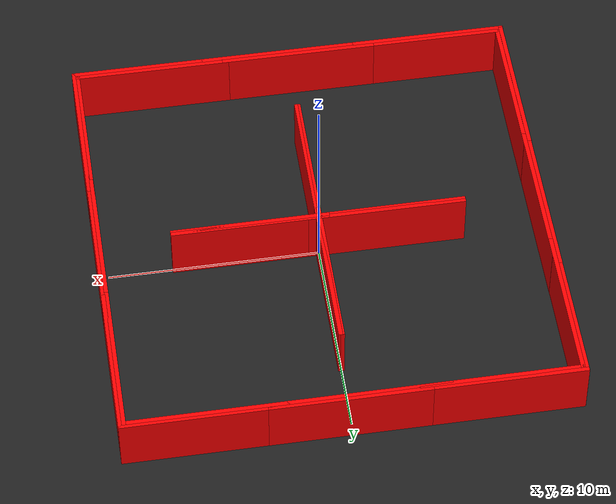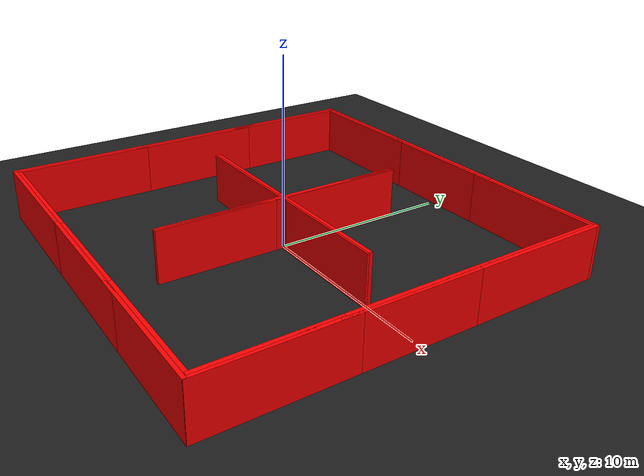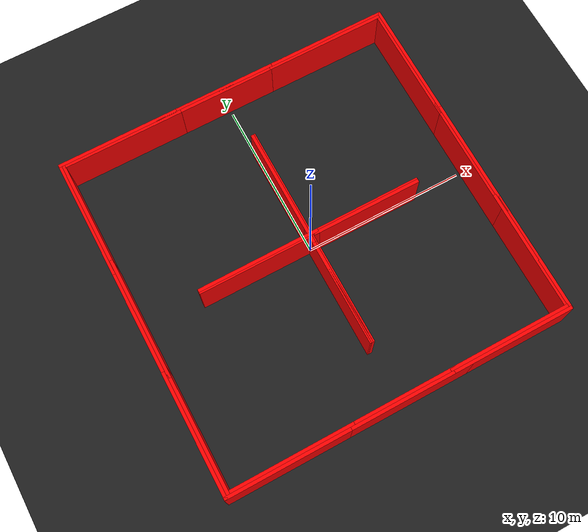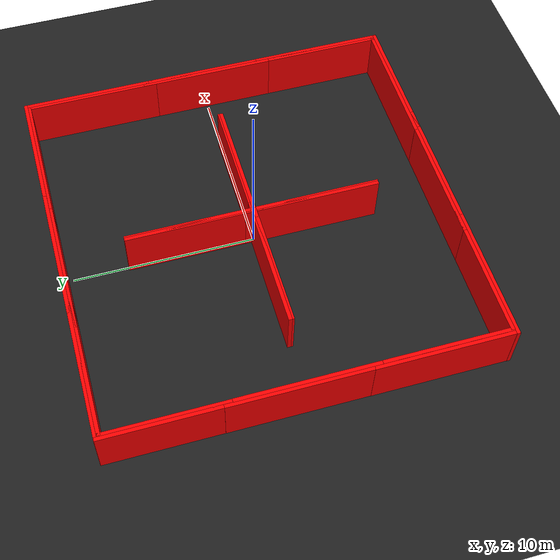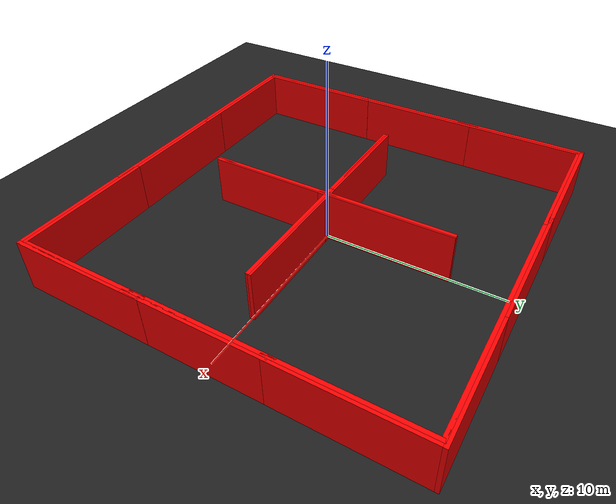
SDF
<sdf version="1.4">
 <world name="default">
  <light name="sun" type="directional">
   <pose>0 0 10 0 -0 0</pose>
   <diffuse>0.8 0.8 0.8 1</diffuse>
   <specular>0.2 0.2 0.2 1</specular>
   <attenuation>
    <range>1000</range>
    <constant>0.9</constant>
    <linear>0.01</linear>
    <quadratic>0.001</quadratic>
   </attenuation>
   <direction>-0.5 0.1 -0.9</direction>
  </light>
  <model name="ground_plane">
   <static>1</static>
   <link name="link">
    <collision name="collision">
     <geometry><plane><normal>0 0 1</normal><size>100 100</size></plane></geometry>
     <surface><friction><ode><mu>100</mu><mu2>50</mu2></ode></friction></surface>
    </collision>
    <visual name="visual">
     <cast_shadows>0</cast_shadows>
     <geometry><plane><normal>0 0 1</normal><size>100 100</size></plane></geometry>
     <material>
      <script><uri>file://media/materials/scripts/gazebo.material</uri><name>Gazebo/Black</name></script>
     </material>
    </visual>
    <velocity_decay><linear>0</linear><angular>0</angular></velocity_decay>
   </link>
  </model>
  <physics type="ode">
   <max_step_size>0.001</max_step_size>
   <real_time_factor>1</real_time_factor>
   <real_time_update_rate>1000</real_time_update_rate>
   <gravity>0 0 -9.8</gravity>
  </physics>
  <scene><ambient>0 0 0 1</ambient><background>0 0 0 1</background><shadows>0</shadows></scene>
  <model name="grey_wall">
   <static>1</static>
   <link name="link">
    <pose>0 0 1.4 0 -0 0</pose>
    <collision name="collision"><geometry><box><size>7.5 0.2 2.8</size></box></geometry></collision>
    <visual name="visual">
     <cast_shadows>0</cast_shadows>
     <geometry><box><size>7.5 0.2 2.8</size></box></geometry>
     <material>
      <ambient>1 0 0 1</ambient>
      <diffuse>1 0 0 1</diffuse>
      <specular>1 0 0 1</specular>
      <emissive>1 0 0 1</emissive>
     </material>
    </visual>
    <velocity_decay><linear>0</linear><angular>0</angular></velocity_decay>
   </link>
   <pose>-6.7561 10.3722 0 0 -0 0</pose>
  </model>
  <model name="grey_wall_0">
   <static>1</static>
   <link name="link">
    <pose>0 0 1.4 0 -0 0</pose>
    <collision name="collision"><geometry><box><size>7.5 0.2 2.8</size></box></geometry></collision>
    <visual name="visual">
     <cast_shadows>0</cast_shadows>
     <geometry><box><size>7.5 0.2 2.8</size></box></geometry>
     <material>
      <ambient>1 0 0 1</ambient>
      <diffuse>1 0 0 1</diffuse>
      <specular>1 0 0 1</specular>
      <emissive>1 0 0 1</emissive>
     </material>
    </visual>
    <velocity_decay><linear>0</linear><angular>0</angular></velocity_decay>
   </link>
   <pose>-0.796756 10.3765 0 0 -0 0</pose>
  </model>
  <model name="grey_wall_1">
   <static>1</static>
   <link name="link">
    <pose>0 0 1.4 0 -0 0</pose>
    <collision name="collision"><geometry><box><size>7.5 0.2 2.8</size></box></geometry></collision>
    <visual name="visual">
     <cast_shadows>0</cast_shadows>
     <geometry><box><size>7.5 0.2 2.8</size></box></geometry>
     <material>
      <ambient>1 0 0 1</ambient>
      <diffuse>1 0 0 1</diffuse>
      <specular>1 0 0 1</specular>
      <emissive>1 0 0 1</emissive>
     </material>
    </visual>
    <velocity_decay><linear>0</linear><angular>0</angular></velocity_decay>
   </link>
   <pose>6.63489 10.3804 0 0 -0 0</pose>
  </model>
  <model name="grey_wall_2">
   <static>1</static>
   <link name="link">
    <pose>0 0 1.4 0 -0 0</pose>
    <collision name="collision"><geometry><box><size>7.5 0.2 2.8</size></box></geometry></collision>
    <visual name="visual">
     <cast_shadows>0</cast_shadows>
     <geometry><box><size>7.5 0.2 2.8</size></box></geometry>
     <material>
      <ambient>1 0 0 1</ambient>
      <diffuse>1 0 0 1</diffuse>
      <specular>1 0 0 1</specular>
      <emissive>1 0 0 1</emissive>
     </material>
    </visual>
    <velocity_decay><linear>0</linear><angular>0</angular></velocity_decay>
   </link>
   <pose>-6.73975 -10.3185 0 0 -0 0</pose>
  </model>
  <model name="grey_wall_3">
   <static>1</static>
   <link name="link">
    <pose>0 0 1.4 0 -0 0</pose>
    <collision name="collision"><geometry><box><size>7.5 0.2 2.8</size></box></geometry></collision>
    <visual name="visual">
     <cast_shadows>0</cast_shadows>
     <geometry><box><size>7.5 0.2 2.8</size></box></geometry>
     <material>
      <ambient>1 0 0 1</ambient>
      <diffuse>1 0 0 1</diffuse>
      <specular>1 0 0 1</specular>
      <emissive>1 0 0 1</emissive>
     </material>
    </visual>
    <velocity_decay><linear>0</linear><angular>0</angular></velocity_decay>
   </link>
   <pose>-0.524266 -10.3159 0 0 -0 0</pose>
  </model>
  <model name="grey_wall_4">
   <static>1</static>
   <link name="link">
    <pose>0 0 1.4 0 -0 0</pose>
    <collision name="collision"><geometry><box><size>7.5 0.2 2.8</size></box></geometry></collision>
    <visual name="visual">
     <cast_shadows>0</cast_shadows>
     <geometry><box><size>7.5 0.2 2.8</size></box></geometry>
     <material>
      <ambient>1 0 0 1</ambient>
      <diffuse>1 0 0 1</diffuse>
      <specular>1 0 0 1</specular>
      <emissive>1 0 0 1</emissive>
     </material>
    </visual>
    <velocity_decay><linear>0</linear><angular>0</angular></velocity_decay>
   </link>
   <pose>6.6605 -10.3136 0 0 -0 0</pose>
  </model>
  <model name="grey_wall_5">
   <static>1</static>
   <link name="link">
    <pose>0 0 1.4 0 -0 0</pose>
    <collision name="collision"><geometry><box><size>7.5 0.2 2.8</size></box></geometry></collision>
    <visual name="visual">
     <cast_shadows>0</cast_shadows>
     <geometry><box><size>7.5 0.2 2.8</size></box></geometry>
     <material>
      <ambient>1 0 0 1</ambient>
      <diffuse>1 0 0 1</diffuse>
      <specular>1 0 0 1</specular>
      <emissive>1 0 0 1</emissive>
     </material>
    </visual>
    <velocity_decay><linear>0</linear><angular>0</angular></velocity_decay>
   </link>
   <pose>10.3255 -6.63645 0 0 0 -1.5708</pose>
  </model>
  <model name="grey_wall_6">
   <static>1</static>
   <link name="link">
    <pose>0 0 1.4 0 -0 0</pose>
    <collision name="collision"><geometry><box><size>7.5 0.2 2.8</size></box></geometry></collision>
    <visual name="visual">
     <cast_shadows>0</cast_shadows>
     <geometry><box><size>7.5 0.2 2.8</size></box></geometry>
     <material>
      <ambient>1 0 0 1</ambient>
      <diffuse>1 0 0 1</diffuse>
      <specular>1 0 0 1</specular>
      <emissive>1 0 0 1</emissive>
     </material>
    </visual>
    <velocity_decay><linear>0</linear><angular>0</angular></velocity_decay>
   </link>
   <pose>10.3224 -0.055181 0 0 -0 1.5708</pose>
  </model>
  <model name="grey_wall_8">
   <static>1</static>
   <link name="link">
    <pose>0 0 1.4 0 -0 0</pose>
    <collision name="collision"><geometry><box><size>7.5 0.2 2.8</size></box></geometry></collision>
    <visual name="visual">
     <cast_shadows>0</cast_shadows>
     <geometry><box><size>7.5 0.2 2.8</size></box></geometry>
     <material>
      <ambient>1 0 0 1</ambient>
      <diffuse>1 0 0 1</diffuse>
      <specular>1 0 0 1</specular>
      <emissive>1 0 0 1</emissive>
     </material>
    </visual>
    <velocity_decay><linear>0</linear><angular>0</angular></velocity_decay>
   </link>
   <pose>-10.4662 6.70249 0 0 -0 1.5708</pose>
  </model>
  <model name="grey_wall_9">
   <static>1</static>
   <link name="link">
    <pose>0 0 1.4 0 -0 0</pose>
    <collision name="collision"><geometry><box><size>7.5 0.2 2.8</size></box></geometry></collision>
    <visual name="visual">
     <cast_shadows>0</cast_shadows>
     <geometry><box><size>7.5 0.2 2.8</size></box></geometry>
     <material>
      <ambient>1 0 0 1</ambient>
      <diffuse>1 0 0 1</diffuse>
      <specular>1 0 0 1</specular>
      <emissive>1 0 0 1</emissive>
     </material>
    </visual>
    <velocity_decay><linear>0</linear><angular>0</angular></velocity_decay>
   </link>
   <pose>-10.4576 0.203964 0 0 0 -1.5708</pose>
  </model>
  <spherical_coordinates>
   <surface_model>EARTH_WGS84</surface_model>
   <latitude_deg>0</latitude_deg>
   <longitude_deg>0</longitude_deg>
   <elevation>0</elevation>
   <heading_deg>0</heading_deg>
  </spherical_coordinates>
  <model name="grey_wall_11">
   <static>1</static>
   <link name="link">
    <pose>0 0 1.4 0 -0 0</pose>
    <collision name="collision"><geometry><box><size>7.5 0.2 2.8</size></box></geometry></collision>
    <visual name="visual">
     <cast_shadows>0</cast_shadows>
     <geometry><box><size>7.5 0.2 2.8</size></box></geometry>
     <material>
      <ambient>1 0 0 1</ambient>
      <diffuse>1 0 0 1</diffuse>
      <specular>1 0 0 1</specular>
      <emissive>1 0 0 1</emissive>
     </material>
    </visual>
    <velocity_decay><linear>0</linear><angular>0</angular></velocity_decay>
   </link>
   <pose>-10.4526 -6.65634 0 0 0 -1.5708</pose>
  </model>
  <model name="grey_wall_13">
   <static>1</static>
   <link name="link">
    <pose>0 0 1.4 0 -0 0</pose>
    <collision name="collision"><geometry><box><size>7.5 0.2 2.8</size></box></geometry></collision>
    <visual name="visual">
     <cast_shadows>0</cast_shadows>
     <geometry><box><size>7.5 0.2 2.8</size></box></geometry>
     <material>
      <ambient>1 0 0 1</ambient>
      <diffuse>1 0 0 1</diffuse>
      <specular>1 0 0 1</specular>
      <emissive>1 0 0 1</emissive>
     </material>
    </visual>
    <velocity_decay><linear>0</linear><angular>0</angular></velocity_decay>
   </link>
   <pose>10.32 6.73319 0 0 -0 1.5708</pose>
  </model>
  <model name="grey_wall_14">
   <static>1</static>
   <link name="link">
    <pose>0 0 1.4 0 -0 0</pose>
    <collision name="collision"><geometry><box><size>7.5 0.2 2.8</size></box></geometry></collision>
    <visual name="visual">
     <cast_shadows>0</cast_shadows>
     <geometry><box><size>7.5 0.2 2.8</size></box></geometry>
     <material>
      <ambient>1 0 0 1</ambient>
      <diffuse>1 0 0 1</diffuse>
      <specular>1 0 0 1</specular>
      <emissive>1 0 0 1</emissive>
     </material>
    </visual>
    <velocity_decay><linear>0</linear><angular>0</angular></velocity_decay>
   </link>
   <pose>3.23934 -0.053911 0 0 -0 0</pose>
  </model>
  <model name="grey_wall_15">
   <static>1</static>
   <link name="link">
    <pose>0 0 1.4 0 -0 0</pose>
    <collision name="collision"><geometry><box><size>7.5 0.2 2.8</size></box></geometry></collision>
    <visual name="visual">
     <cast_shadows>0</cast_shadows>
     <geometry><box><size>7.5 0.2 2.8</size></box></geometry>
     <material>
      <ambient>1 0 0 1</ambient>
      <diffuse>1 0 0 1</diffuse>
      <specular>1 0 0 1</specular>
      <emissive>1 0 0 1</emissive>
     </material>
    </visual>
    <velocity_decay><linear>0</linear><angular>0</angular></velocity_decay>
   </link>
   <pose>-0.045845 3.24836 0 0 0 -1.5708</pose>
  </model>
  <model name="grey_wall_16">
   <static>1</static>
   <link name="link">
    <pose>0 0 1.4 0 -0 0</pose>
    <collision name="collision"><geometry><box><size>7.5 0.2 2.8</size></box></geometry></collision>
    <visual name="visual">
     <cast_shadows>0</cast_shadows>
     <geometry><box><size>7.5 0.2 2.8</size></box></geometry>
     <material>
      <ambient>1 0 0 1</ambient>
      <diffuse>1 0 0 1</diffuse>
      <specular>1 0 0 1</specular>
      <emissive>1 0 0 1</emissive>
     </material>
    </visual>
    <velocity_decay><linear>0</linear><angular>0</angular></velocity_decay>
   </link>
   <pose>-0.052043 -3.26105 0 0 0 -1.5708</pose>
  </model>
  <model name="grey_wall_17">
   <static>1</static>
   <link name="link">
    <pose>0 0 1.4 0 -0 0</pose>
    <collision name="collision"><geometry><box><size>7.5 0.2 2.8</size></box></geometry></collision>
    <visual name="visual">
     <cast_shadows>0</cast_shadows>
     <geometry><box><size>7.5 0.2 2.8</size></box></geometry>
     <material>
      <ambient>1 0 0 1</ambient>
      <diffuse>1 0 0 1</diffuse>
      <specular>1 0 0 1</specular>
      <emissive>1 0 0 1</emissive>
     </material>
    </visual>
    <velocity_decay><linear>0</linear><angular>0</angular></velocity_decay>
   </link>
   <pose>-3.24213 -0.061588 0 0 -0 0</pose>
  </model>
  <model name="grey_wall_18">
   <static>1</static>
   <link name="link">
    <pose>0 0 1.4 0 -0 0</pose>
    <collision name="collision"><geometry><box><size>7.5 0.2 2.8</size></box></geometry></collision>
    <visual name="visual">
     <cast_shadows>0</cast_shadows>
     <geometry><box><size>7.5 0.2 2.8</size></box></geometry>
     <material>
      <ambient>1 0 0 1</ambient>
      <diffuse>1 0 0 1</diffuse>
      <specular>1 0 0 1</specular>
      <emissive>1 0 0 1</emissive>
     </material>
    </visual>
    <velocity_decay><linear>0</linear><angular>0</angular></velocity_decay>
   </link>
   <pose>-3.24325 0.053508 0 0 -0 0</pose>
  </model>
  <model name="grey_wall_19">
   <static>1</static>
   <link name="link">
    <pose>0 0 1.4 0 -0 0</pose>
    <collision name="collision"><geometry><box><size>7.5 0.2 2.8</size></box></geometry></collision>
    <visual name="visual">
     <cast_shadows>0</cast_shadows>
     <geometry><box><size>7.5 0.2 2.8</size></box></geometry>
     <material>
      <ambient>1 0 0 1</ambient>
      <diffuse>1 0 0 1</diffuse>
      <specular>1 0 0 1</specular>
      <emissive>1 0 0 1</emissive>
     </material>
    </visual>
    <velocity_decay><linear>0</linear><angular>0</angular></velocity_decay>
   </link>
   <pose>3.24309 0.051639 0 0 -0 0</pose>
  </model>
  <model name="grey_wall_20">
   <static>1</static>
   <link name="link">
    <pose>0 0 1.4 0 -0 0</pose>
    <collision name="collision"><geometry><box><size>7.5 0.2 2.8</size></box></geometry></collision>
    <visual name="visual">
     <cast_shadows>0</cast_shadows>
     <geometry><box><size>7.5 0.2 2.8</size></box></geometry>
     <material>
      <ambient>1 0 0 1</ambient>
      <diffuse>1 0 0 1</diffuse>
      <specular>1 0 0 1</specular>
      <emissive>1 0 0 1</emissive>
     </material>
    </visual>
    <velocity_decay><linear>0</linear><angular>0</angular></velocity_decay>
   </link>
   <pose>0.04316 3.24759 0 0 0 -1.5708</pose>
  </model>
  <model name="grey_wall_21">
   <static>1</static>
   <link name="link">
    <pose>0 0 1.4 0 -0 0</pose>
    <collision name="collision"><geometry><box><size>7.5 0.2 2.8</size></box></geometry></collision>
    <visual name="visual">
     <cast_shadows>0</cast_shadows>
     <geometry><box><size>7.5 0.2 2.8</size></box></geometry>
     <material>
      <ambient>1 0 0 1</ambient>
      <diffuse>1 0 0 1</diffuse>
      <specular>1 0 0 1</specular>
      <emissive>1 0 0 1</emissive>
     </material>
    </visual>
    <velocity_decay><linear>0</linear><angular>0</angular></velocity_decay>
   </link>
   <pose>0.040132 -3.26663 0 0 -0 1.5708</pose>
  </model>
  <model name="grey_wall_22">
   <static>1</static>
   <link name="link">
    <pose>0 0 1.4 0 -0 0</pose>
    <collision name="collision"><geometry><box><size>7.5 0.2 2.8</size></box></geometry></collision>
    <visual name="visual">
     <cast_shadows>0</cast_shadows>
     <geometry><box><size>7.5 0.2 2.8</size></box></geometry>
     <material>
      <ambient>1 0 0 1</ambient>
      <diffuse>1 0 0 1</diffuse>
      <specular>1 0 0 1</specular>
      <emissive>1 0 0 1</emissive>
     </material>
    </visual>
    <velocity_decay><linear>0</linear><angular>0</angular></velocity_decay>
   </link>
   <pose>0.114308 10.538 0 0 -0 0</pose>
  </model>
  <model name="grey_wall_23">
   <static>1</static>
   <link name="link">
    <pose>0 0 1.4 0 -0 0</pose>
    <collision name="collision"><geometry><box><size>7.5 0.2 2.8</size></box></geometry></collision>
    <visual name="visual">
     <cast_shadows>0</cast_shadows>
     <geometry><box><size>7.5 0.2 2.8</size></box></geometry>
     <material>
      <ambient>1 0 0 1</ambient>
      <diffuse>1 0 0 1</diffuse>
      <specular>1 0 0 1</specular>
      <emissive>1 0 0 1</emissive>
     </material>
    </visual>
    <velocity_decay><linear>0</linear><angular>0</angular></velocity_decay>
   </link>
   <pose>-6.97668 10.5368 0 0 -0 0</pose>
  </model>
  <model name="grey_wall_24">
   <static>1</static>
   <link name="link">
    <pose>0 0 1.4 0 -0 0</pose>
    <collision name="collision"><geometry><box><size>7.5 0.2 2.8</size></box></geometry></collision>
    <visual name="visual">
     <cast_shadows>0</cast_shadows>
     <geometry><box><size>7.5 0.2 2.8</size></box></geometry>
     <material>
      <ambient>1 0 0 1</ambient>
      <diffuse>1 0 0 1</diffuse>
      <specular>1 0 0 1</specular>
      <emissive>1 0 0 1</emissive>
     </material>
    </visual>
    <velocity_decay><linear>0</linear><angular>0</angular></velocity_decay>
   </link>
   <pose>6.80524 -10.5022 0 0 -0 0</pose>
  </model>
  <model name="grey_wall_25">
   <static>1</static>
   <link name="link">
    <pose>0 0 1.4 0 -0 0</pose>
    <collision name="collision"><geometry><box><size>7.5 0.2 2.8</size></box></geometry></collision>
    <visual name="visual">
     <cast_shadows>0</cast_shadows>
     <geometry><box><size>7.5 0.2 2.8</size></box></geometry>
     <material>
      <ambient>1 0 0 1</ambient>
      <diffuse>1 0 0 1</diffuse>
      <specular>1 0 0 1</specular>
      <emissive>1 0 0 1</emissive>
     </material>
    </visual>
    <velocity_decay><linear>0</linear><angular>0</angular></velocity_decay>
   </link>
   <pose>6.83461 10.5364 0 0 -0 0</pose>
  </model>
  <model name="grey_wall_26">
   <static>1</static>
   <link name="link">
    <pose>0 0 1.4 0 -0 0</pose>
    <collision name="collision"><geometry><box><size>7.5 0.2 2.8</size></box></geometry></collision>
    <visual name="visual">
     <cast_shadows>0</cast_shadows>
     <geometry><box><size>7.5 0.2 2.8</size></box></geometry>
     <material>
      <ambient>1 0 0 1</ambient>
      <diffuse>1 0 0 1</diffuse>
      <specular>1 0 0 1</specular>
      <emissive>1 0 0 1</emissive>
     </material>
    </visual>
    <velocity_decay><linear>0</linear><angular>0</angular></velocity_decay>
   </link>
   <pose>-7.02001 -10.5035 0 0 -0 0</pose>
  </model>
  <model name="grey_wall_27">
   <static>1</static>
   <link name="link">
    <pose>0 0 1.4 0 -0 0</pose>
    <collision name="collision"><geometry><box><size>7.5 0.2 2.8</size></box></geometry></collision>
    <visual name="visual">
     <cast_shadows>0</cast_shadows>
     <geometry><box><size>7.5 0.2 2.8</size></box></geometry>
     <material>
      <ambient>1 0 0 1</ambient>
      <diffuse>1 0 0 1</diffuse>
      <specular>1 0 0 1</specular>
      <emissive>1 0 0 1</emissive>
     </material>
    </visual>
    <velocity_decay><linear>0</linear><angular>0</angular></velocity_decay>
   </link>
   <pose>0.448196 -10.503 0 0 -0 0</pose>
  </model>
  <model name="grey_wall_30">
   <static>1</static>
   <link name="link">
    <pose>0 0 1.4 0 -0 0</pose>
    <collision name="collision"><geometry><box><size>7.5 0.2 2.8</size></box></geometry></collision>
    <visual name="visual">
     <cast_shadows>0</cast_shadows>
     <geometry><box><size>7.5 0.2 2.8</size></box></geometry>
     <material>
      <ambient>1 0 0 1</ambient>
      <diffuse>1 0 0 1</diffuse>
      <specular>1 0 0 1</specular>
      <emissive>1 0 0 1</emissive>
     </material>
    </visual>
    <velocity_decay><linear>0</linear><angular>0</angular></velocity_decay>
   </link>
   <pose>10.4812 -6.83635 0 0 0 -1.5708</pose>
  </model>
  <model name="grey_wall_31">
   <static>1</static>
   <link name="link">
    <pose>0 0 1.4 0 -0 0</pose>
    <collision name="collision"><geometry><box><size>7.5 0.2 2.8</size></box></geometry></collision>
    <visual name="visual">
     <cast_shadows>0</cast_shadows>
     <geometry><box><size>7.5 0.2 2.8</size></box></geometry>
     <material>
      <ambient>1 0 0 1</ambient>
      <diffuse>1 0 0 1</diffuse>
      <specular>1 0 0 1</specular>
      <emissive>1 0 0 1</emissive>
     </material>
    </visual>
    <velocity_decay><linear>0</linear><angular>0</angular></velocity_decay>
   </link>
   <pose>10.4796 -0.367797 0 0 0 -1.5708</pose>
  </model>
  <model name="grey_wall_32">
   <static>1</static>
   <link name="link">
    <pose>0 0 1.4 0 -0 0</pose>
    <collision name="collision"><geometry><box><size>7.5 0.2 2.8</size></box></geometry></collision>
    <visual name="visual">
     <cast_shadows>0</cast_shadows>
     <geometry><box><size>7.5 0.2 2.8</size></box></geometry>
     <material>
      <ambient>1 0 0 1</ambient>
      <diffuse>1 0 0 1</diffuse>
      <specular>1 0 0 1</specular>
      <emissive>1 0 0 1</emissive>
     </material>
    </visual>
    <velocity_decay><linear>0</linear><angular>0</angular></velocity_decay>
   </link>
   <pose>-10.6439 0.659672 0 0 0 -1.5708</pose>
  </model>
  <model name="grey_wall_33">
   <static>1</static>
   <link name="link">
    <pose>0 0 1.4 0 -0 0</pose>
    <collision name="collision"><geometry><box><size>7.5 0.2 2.8</size></box></geometry></collision>
    <visual name="visual">
     <cast_shadows>0</cast_shadows>
     <geometry><box><size>7.5 0.2 2.8</size></box></geometry>
     <material>
      <ambient>1 0 0 1</ambient>
      <diffuse>1 0 0 1</diffuse>
      <specular>1 0 0 1</specular>
      <emissive>1 0 0 1</emissive>
     </material>
    </visual>
    <velocity_decay><linear>0</linear><angular>0</angular></velocity_decay>
   </link>
   <pose>-10.6557 -6.8286 0 0 0 -1.5708</pose>
  </model>
  <model name="grey_wall_34">
   <static>1</static>
   <link name="link">
    <pose>0 0 1.4 0 -0 0</pose>
    <collision name="collision"><geometry><box><size>7.5 0.2 2.8</size></box></geometry></collision>
    <visual name="visual">
     <cast_shadows>0</cast_shadows>
     <geometry><box><size>7.5 0.2 2.8</size></box></geometry>
     <material>
      <ambient>1 0 0 1</ambient>
      <diffuse>1 0 0 1</diffuse>
      <specular>1 0 0 1</specular>
      <emissive>1 0 0 1</emissive>
     </material>
    </visual>
    <velocity_decay><linear>0</linear><angular>0</angular></velocity_decay>
   </link>
   <pose>10.4819 6.86913 0 0 0 -1.5708</pose>
  </model>
  <model name="grey_wall_35">
   <static>1</static>
   <link name="link">
    <pose>0 0 1.4 0 -0 0</pose>
    <collision name="collision"><geometry><box><size>7.5 0.2 2.8</size></box></geometry></collision>
    <visual name="visual">
     <cast_shadows>0</cast_shadows>
     <geometry><box><size>7.5 0.2 2.8</size></box></geometry>
     <material>
      <ambient>1 0 0 1</ambient>
      <diffuse>1 0 0 1</diffuse>
      <specular>1 0 0 1</specular>
      <emissive>1 0 0 1</emissive>
     </material>
    </visual>
    <velocity_decay><linear>0</linear><angular>0</angular></velocity_decay>
   </link>
   <pose>-10.6357 6.87471 0 0 0 -1.5708</pose>
  </model>
 </world>
</sdf>
